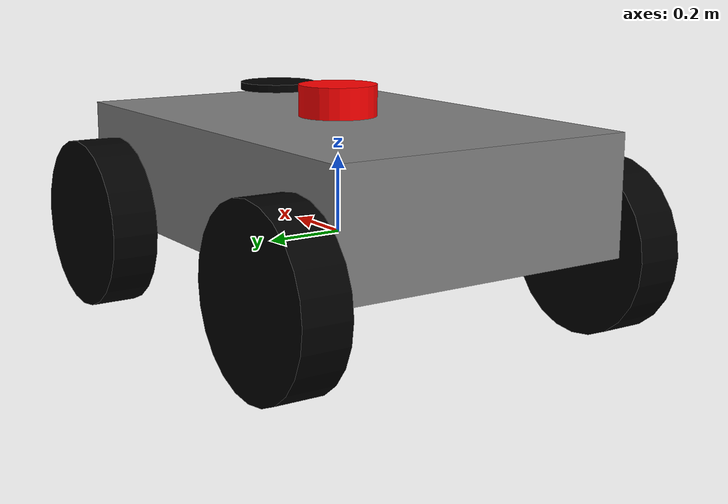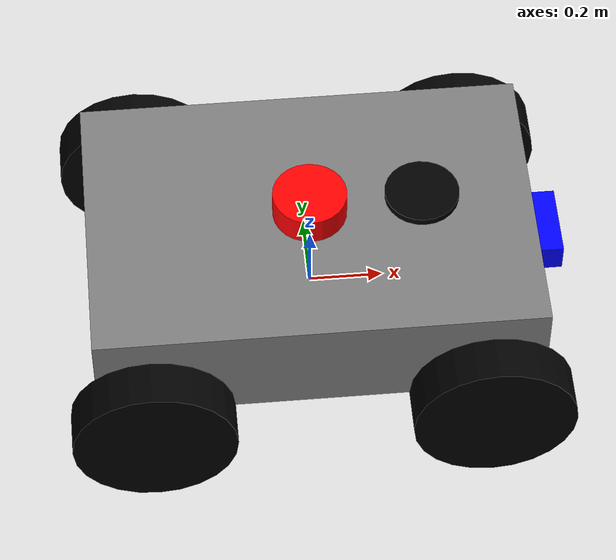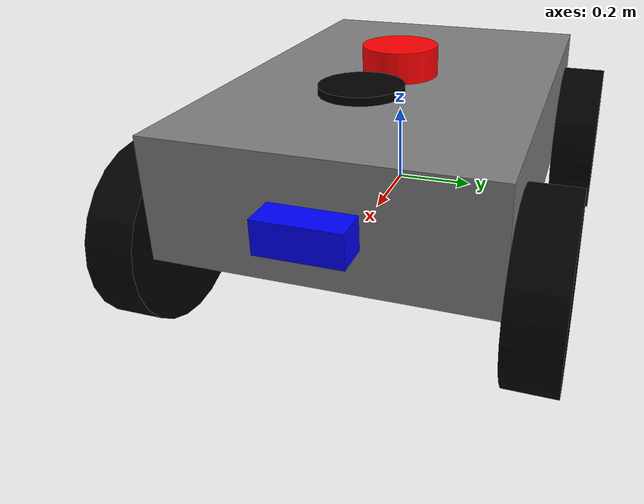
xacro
<?xml version="1.0"?>
<robot xmlns:xacro="http://www.ros.org/wiki/xacro"  name="robot">

    <xacro:include filename="my_bot_core.xacro" />

    <xacro:include filename="my_bot_gazebo_control.xacro" />
    <xacro:include filename="lidar.xacro" />
    <xacro:include filename="camera1.xacro" />

</robot>

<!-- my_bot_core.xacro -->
<robot xmlns:xacro="http://www.ros.org/wiki/xacro">

  <link name="base_link"/>

  <material name="Gray"><color rgba="0.5 0.5 0.5 1.0"/></material>

  <material name="Black"><color rgba="0.0 0.0 0.0 1.0"/></material>

  <material name="Red"><color rgba="1.0 0.0 0.0 1.0"/></material>

  <material name="Blue"><color rgba="0.0 0.0 1.0 1.0"/></material>

  <material name="Green"><color rgba="0.0 1.0 0.0 1.0"/></material>

  <material name="White"><color rgba="1.0 1.0 1.0 1.0"/></material>

  <!-- Chassis -->

  <link name="chassis">

    <inertial>

      <mass value="1.0"/>

      <origin rpy="0 0 0" xyz="0 0 0"/>

      <inertia ixx="0.060833" ixy="0" ixz="0" iyy="0.1275" iyz="0" izz="0.173333"/>

    </inertial>

    <visual>

      <origin rpy="0 0 0" xyz="0 0 0"/>

      <geometry><box size="1.2 0.8 0.3"/></geometry>

      <material name="Gray"/>

    </visual>

    <collision>

      <origin rpy="0 0 0" xyz="0 0 0"/>

      <geometry><box size="1.2 0.8 0.3"/></geometry>

    </collision>

  </link>

  <joint name="base_to_chassis" type="fixed">

    <parent link="base_link"/>

    <child link="chassis"/>

    <origin rpy="0 0 0" xyz="0 0 0.15"/>

  </joint>

  <!-- DRIVETRAIN -->

  <!-- Steering Wheel -->

  <link name="steering_wheel_link">

    <inertial>

      <mass value="0.5"/>

      <origin rpy="0 0 0" xyz="0 0 0"/>

      <inertia ixx="0.001" ixy="0" ixz="0" iyy="0.001" iyz="0" izz="0.001"/>

    </inertial>

    <visual>

      <origin rpy="0 0 0" xyz="0 0 0"/>

      <geometry><cylinder radius="0.1" length="0.02"/></geometry>

      <material name="Black"/>

    </visual>

  </link>

  <joint name="steering_wheel_joint" type="revolute">

    <parent link="chassis"/>

    <child link="steering_wheel_link"/>

    <origin rpy="0 0 0" xyz="0.3 0 0.2"/>

    <axis xyz="0 0 1"/>

    <limit effort="100" velocity="10" lower="-7.85" upper="7.85"/>

  </joint>

  <!-- Front Left Steering -->

  <link name="front_left_steering">

    <inertial>

      <mass value="0.1"/>

      <origin rpy="0 0 0" xyz="0 0 0"/>

      <inertia ixx="0.001" ixy="0" ixz="0" iyy="0.001" iyz="0" izz="0.001"/>

    </inertial>

  </link>

  <joint name="front_left_steering_joint" type="revolute">

    <parent link="chassis"/>

    <child link="front_left_steering"/>

    <origin rpy="0 0 0" xyz="0.4533 0.46 -0.15"/>

    <axis xyz="0 0 1"/>

    <limit effort="100" velocity="10" lower="-0.5" upper="0.5"/>

  </joint>

  <!-- Front Left Wheel -->

  <link name="front_left_wheel">

    <inertial>

      <mass value="0.5"/>

      <origin rpy="1.5708 0 0" xyz="0 0 0"/>

      <inertia ixx="0.00665" ixy="0" ixz="0" iyy="0.00665" iyz="0" izz="0.0121"/>

    </inertial>

    <visual>

      <origin rpy="1.5708 0 0" xyz="0 0 0"/>

      <geometry><cylinder length="0.12" radius="0.22"/></geometry>

      <material name="Black"/>

    </visual>

    <collision>

      <origin rpy="1.5708 0 0" xyz="0 0 0"/>

      <geometry><cylinder length="0.12" radius="0.22"/></geometry>

    </collision>

  </link>

  <joint name="front_left_wheel_joint" type="continuous">

    <parent link="front_left_steering"/>

    <child link="front_left_wheel"/>

    <origin rpy="0 0 0" xyz="0 0 0"/>

    <axis xyz="0 1 0"/>

  </joint>

  <!-- Front Right Steering -->

  <link name="front_right_steering">

    <inertial>

      <mass value="0.1"/>

      <origin rpy="0 0 0" xyz="0 0 0"/>

      <inertia ixx="0.001" ixy="0" ixz="0" iyy="0.001" iyz="0" izz="0.001"/>

    </inertial>

  </link>

  <joint name="front_right_steering_joint" type="revolute">

    <parent link="chassis"/>

    <child link="front_right_steering"/>

    <origin rpy="0 0 0" xyz="0.4533 -0.46 -0.15"/>

    <axis xyz="0 0 1"/>

    <limit effort="100" velocity="10" lower="-0.5" upper="0.5"/>

    <mimic joint="front_left_steering_joint" multiplier="-1" offset="0"/>

  </joint>

  <!-- Front Right Wheel -->

  <link name="front_right_wheel">

    <inertial>

      <mass value="0.5"/>

      <origin rpy="1.5708 0 0" xyz="0 0 0"/>

      <inertia ixx="0.00665" ixy="0" ixz="0" iyy="0.00665" iyz="0" izz="0.0121"/>

    </inertial>

    <visual>

      <origin rpy="1.5708 0 0" xyz="0 0 0"/>

      <geometry><cylinder length="0.12" radius="0.22"/></geometry>

      <material name="Black"/>

    </visual>

    <collision>

      <origin rpy="1.5708 0 0" xyz="0 0 0"/>

      <geometry><cylinder length="0.12" radius="0.22"/></geometry>

    </collision>

  </link>

  <joint name="front_right_wheel_joint" type="continuous">

    <parent link="front_right_steering"/>

    <child link="front_right_wheel"/>

    <origin rpy="0 0 0" xyz="0 0 0"/>

    <axis xyz="0 1 0"/>

  </joint>

  <!-- Rear Wheels -->

  <link name="rear_left_wheel">

    <inertial>

      <mass value="0.5"/>

      <origin rpy="1.5708 0 0" xyz="0 0 0"/>

      <inertia ixx="0.00665" ixy="0" ixz="0" iyy="0.00665" iyz="0" izz="0.0121"/>

    </inertial>

    <visual>

      <origin rpy="1.5708 0 0" xyz="0 0 0"/>

      <geometry><cylinder length="0.12" radius="0.22"/></geometry>

      <material name="Black"/>

    </visual>

    <collision>

      <origin rpy="1.5708 0 0" xyz="0 0 0"/>

      <geometry><cylinder length="0.12" radius="0.22"/></geometry>

    </collision>

  </link>

  <joint name="rear_left_wheel_joint" type="continuous">

    <parent link="chassis"/>

    <child link="rear_left_wheel"/>

    <origin rpy="0 0 0" xyz="-0.4533  0.46 -0.15"/>

    <axis xyz="0 1 0"/>

  </joint>

  <link name="rear_right_wheel">

    <inertial>

      <mass value="0.5"/>

      <origin rpy="1.5708 0 0" xyz="0 0 0"/>

      <inertia ixx="0.00665" ixy="0" ixz="0" iyy="0.00665" iyz="0" izz="0.0121"/>

    </inertial>

    <visual>

      <origin rpy="1.5708 0 0" xyz="0 0 0"/>

      <geometry><cylinder length="0.12" radius="0.22"/></geometry>

      <material name="Black"/>

    </visual>

    <collision>

      <origin rpy="1.5708 0 0" xyz="0 0 0"/>

      <geometry><cylinder length="0.12" radius="0.22"/></geometry>

    </collision>

  </link>

  <joint name="rear_right_wheel_joint" type="continuous">

    <parent link="chassis"/>

    <child link="rear_right_wheel"/>

    <origin rpy="0 0 0" xyz="-0.4533 -0.46 -0.15"/>

    <axis xyz="0 1 0"/>

  </joint>

</robot>

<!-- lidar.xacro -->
<robot xmlns:xacro="http://www.ros.org/wiki/xacro">

  <link name="lidar">

    <inertial>

      <mass value="0.2" />

      <origin rpy="0 0 0" xyz="0 0 0" />

      <inertia ixx="0.000606" ixy="0" ixz="0" iyy="0.000606" iyz="0" izz="0.001" />

    </inertial>

    <visual>

      <origin rpy="0 0 0" xyz="0 0 0" />

      <geometry>
        <cylinder length="0.08" radius="0.1" />
      </geometry>

      <material name="Red" />

    </visual>

    <collision>

      <origin rpy="0 0 0" xyz="0 0 0" />

      <geometry>
        <cylinder length="0.08" radius="0.1" />
      </geometry>

    </collision>

  </link>

  <joint name="lidar_joint" type="fixed">

    <parent link="chassis" />

    <child link="lidar" />

    <origin rpy="0 0 0" xyz="0 0 0.19" />

  </joint>

  <gazebo reference="laser_frame">
    <material>Gazebo/Red</material>

    <sensor name="laser" type="ray">
      <pose> 0 0 0 0 0 0 </pose>
      <visualize>true</visualize>
      <update_rate>10</update_rate>
      <ray>
        <scan>
          <horizontal>
            <samples>360</samples>
            <min_angle>-3.14</min_angle>
            <max_angle>3.14</max_angle>
          </horizontal>
        </scan>
        <range>
          <min>0.3</min>
          <max>12</max>
        </range>
      </ray>
      <plugin name="laser_controller" filename="libgazebo_ros_ray_sensor.so">
        <ros>
          <argument>~/out:=scan</argument>
        </ros>
        <output_type>sensor_msgs/LaserScan</output_type>
        <frame_name>laser_frame</frame_name>
      </plugin>
    </sensor>
  </gazebo>

</robot>

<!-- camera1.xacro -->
<robot xmlns:xacro="http://www.ros.org/wiki/xacro">

  <link name="camera">

    <inertial>

      <mass value="0.1" />

      <origin rpy="0 0 0" xyz="0 0 0" />

      <inertia ixx="0.000386" ixy="0" ixz="0" iyy="0.000106" iyz="0" izz="0.000386" />

    </inertial>

    <visual>

      <origin rpy="0 0 0" xyz="0 0 0" />

      <geometry>
        <box size="0.08 0.2 0.08" />
      </geometry>

      <material name="Blue" />

    </visual>

    <collision>

      <origin rpy="0 0 0" xyz="0 0 0" />

      <geometry>
        <box size="0.08 0.2 0.08" />
      </geometry>

    </collision>

  </link>

  <joint name="camera_joint" type="fixed">

    <parent link="chassis" />

    <child link="camera" />

    <origin rpy="0 0 0" xyz="0.64 0 0" />

  </joint>

  <link name="camera_optical" />

  <joint name="camera_optical_joint" type="fixed">

    <parent link="camera" />

    <child link="camera_optical" />

    <origin rpy="-1.5708 0 -1.5708" xyz="0 0 0" />

  </joint>

  <gazebo reference="camera_link">
    <material>Gazebo/Red</material>

    <sensor name="camera" type="camera">
      <pose> 0 0 0 0 0 0 </pose>
      <visualize>true</visualize>
      <update_rate>10</update_rate>
      <camera>
        <horizontal_fov>1.089</horizontal_fov>
        <image>
          <format>R8G8B8</format>
          <width>640</width>
          <height>480</height>
        </image>
        <clip>
          <near>0.05</near>
          <far>8.0</far>
        </clip>
      </camera>
      <plugin name="camera_controller" filename="libgazebo_ros_camera.so">
        <frame_name>camera_link_optical</frame_name>
      </plugin>
    </sensor>
  </gazebo>

</robot>
